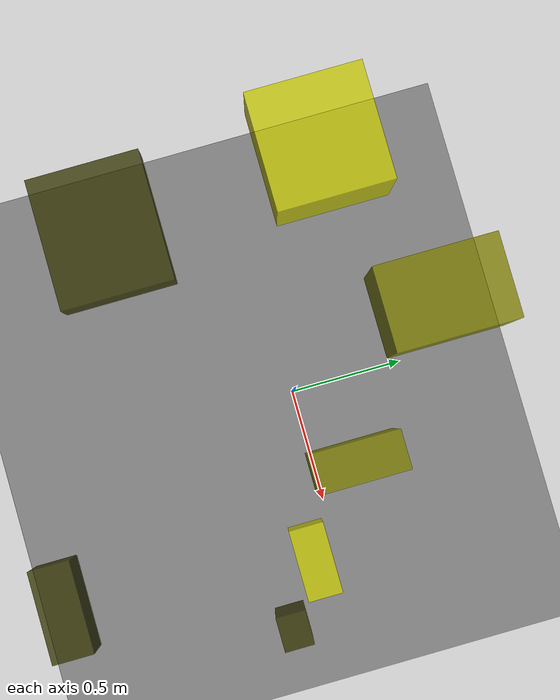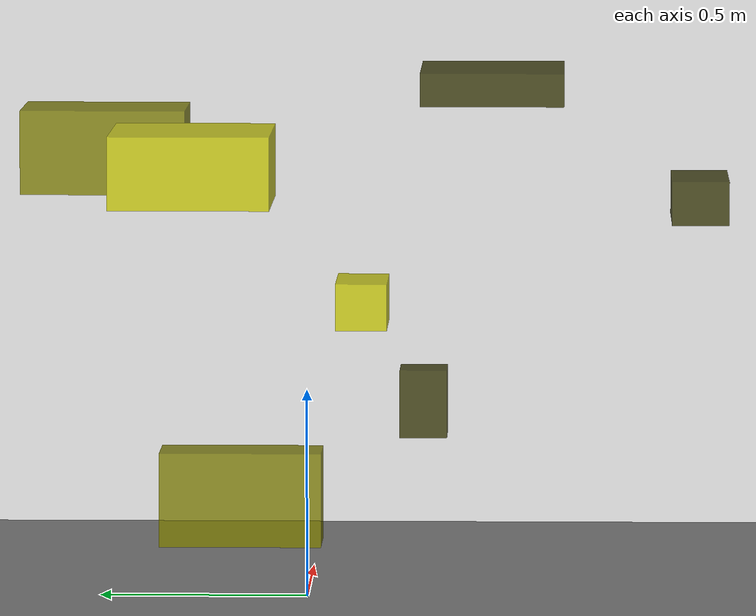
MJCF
<?xml version="1.0"?>
<mujoco model="obstacle_scene">
  <compiler angle="radian" coordinate="local"/>
  <option timestep="0.001" gravity="0 0 -9.81"/>

  <asset>
    <material name="obstacle_mat" rgba="0.8 0.8 0.0 0.8"/>
    <material name="ground_mat" rgba="0.5 0.5 0.5 1"/>
  </asset>

  <worldbody>
    <!-- Ground plane -->
    <geom name="ground" type="plane" size="3 3 0.1" material="ground_mat"/>

    <!-- Obstacles -->
    <body name="obstacle_0" pos="-0.549386 -0.451142 1.285456">
      <geom name="obs_0" type="box" size="0.191828 0.165393 0.037834" rgba="0.2 0.2 0.0 0.8"/>
    </body>
    <body name="obstacle_1" pos="0.362149 0.175191 0.191535">
      <geom name="obs_1" type="box" size="0.085801 0.198477 0.115192" rgba="0.5 0.5 0.0 0.8"/>
    </body>
    <body name="obstacle_2" pos="-0.683177 0.240330 1.103561">
      <geom name="obs_2" type="box" size="0.188112 0.185171 0.084190" rgba="0.8 0.8 0.0 0.8"/>
    </body>
    <body name="obstacle_3" pos="0.910069 -0.262843 0.358865">
      <geom name="obs_3" type="box" size="0.068106 0.059531 0.085798" rgba="0.2 0.2 0.0 0.8"/>
    </body>
    <body name="obstacle_4" pos="-0.127000 0.474467 1.095310">
      <geom name="obs_4" type="box" size="0.134424 0.194872 0.099172" rgba="0.5 0.5 0.0 0.8"/>
    </body>
    <body name="obstacle_5" pos="0.626208 -0.115213 0.642820">
      <geom name="obs_5" type="box" size="0.129525 0.063758 0.057495" rgba="0.8 0.8 0.0 0.8"/>
    </body>
    <body name="obstacle_6" pos="0.505537 -0.950896 0.917188">
      <geom name="obs_6" type="box" size="0.154787 0.069844 0.053625" rgba="0.2 0.2 0.0 0.8"/>
    </body>
  </worldbody>
</mujoco>
